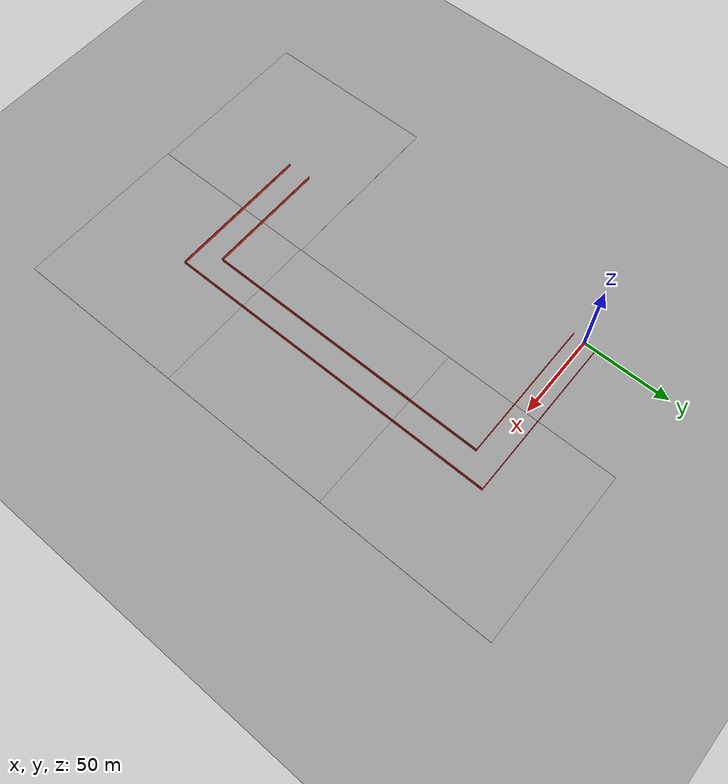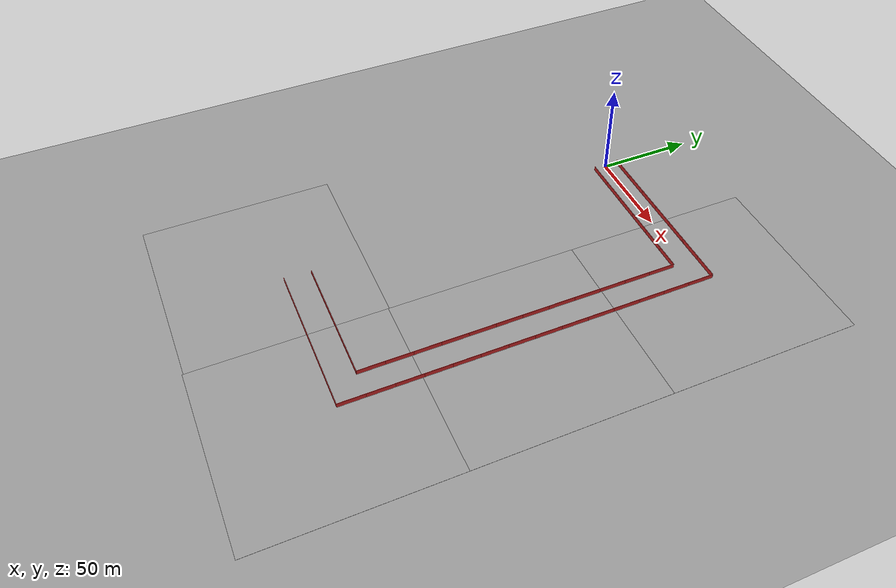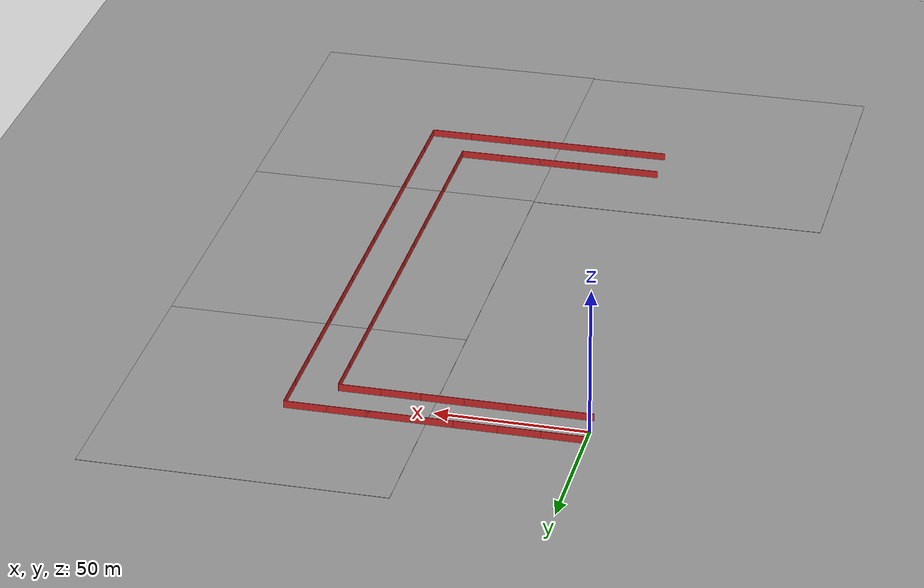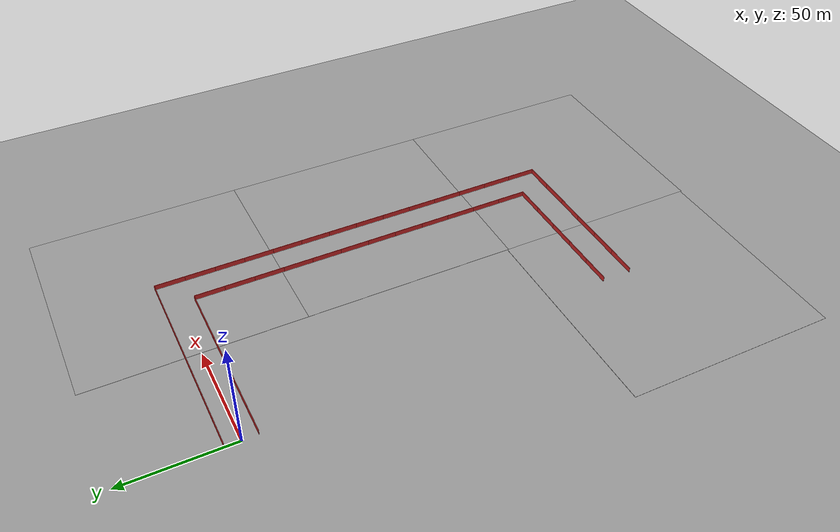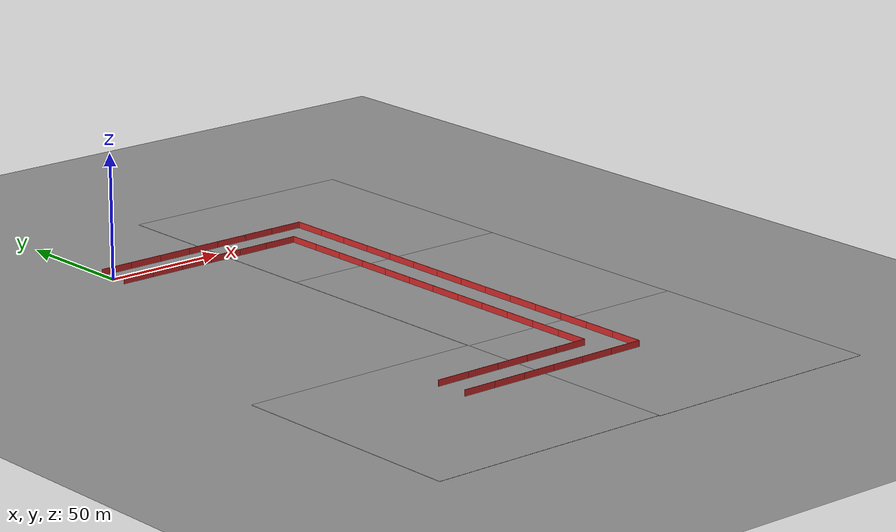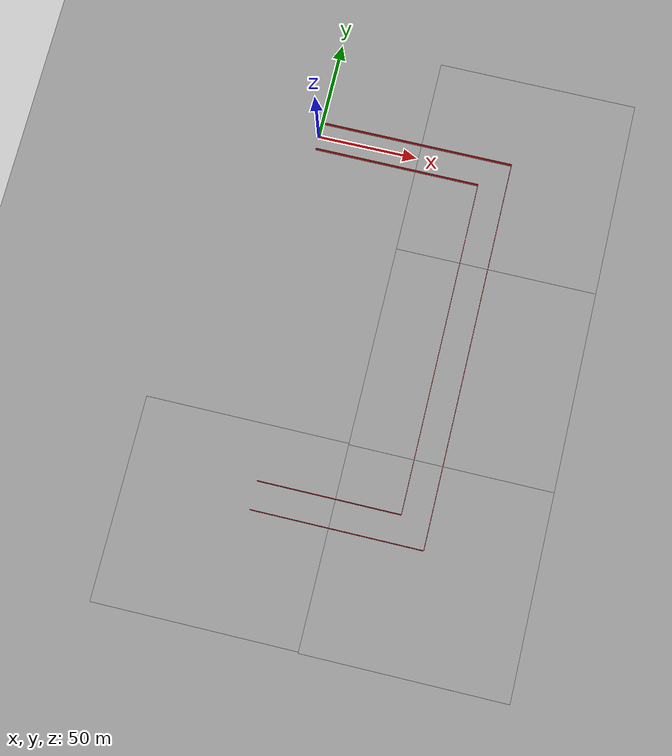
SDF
<sdf version="1.4">
 <world name="default">
  <model name="staright_14m">
   <link name="Wall_26">
    <collision name="Wall_26_Collision">
     <geometry><box><size>14 0.2 2.5</size></box></geometry>
     <pose>0 0 1.25 0 -0 0</pose>
    </collision>
    <visual name="Wall_26_Visual">
     <pose>0 0 1.25 0 -0 0</pose>
     <geometry><box><size>14 0.2 2.5</size></box></geometry>
     <material>
      <script>
       <uri>model://materials/scripts</uri>
       <uri>model://materials/textures</uri>
       <name>vrc/red_wall</name>
      </script>
     </material>
    </visual>
    <velocity_decay><linear>0</linear><angular>0</angular></velocity_decay>
    <pose>0 -7 0 0 -0 0</pose>
   </link>
   <link name="Wall_28">
    <collision name="Wall_28_Collision">
     <geometry><box><size>14 0.2 2.5</size></box></geometry>
     <pose>0 0 1.25 0 -0 0</pose>
    </collision>
    <visual name="Wall_28_Visual">
     <pose>0 0 1.25 0 -0 0</pose>
     <geometry><box><size>14 0.2 2.5</size></box></geometry>
     <material>
      <script>
       <uri>model://materials/scripts</uri>
       <uri>model://materials/textures</uri>
       <name>vrc/red_wall</name>
      </script>
     </material>
    </visual>
    <velocity_decay><linear>0</linear><angular>0</angular></velocity_decay>
    <pose>0 7 0 0 -0 0</pose>
   </link>
   <static>1</static>
   <pose>7 0 0 0 -0 0</pose>
  </model>
  <model name="staright_28m_3">
   <link name="Wall_26">
    <collision name="Wall_26_Collision">
     <geometry><box><size>14 0.2 2.5</size></box></geometry>
     <pose>0 0 1.25 0 -0 0</pose>
    </collision>
    <visual name="Wall_26_Visual">
     <pose>0 0 1.25 0 -0 0</pose>
     <geometry><box><size>14 0.2 2.5</size></box></geometry>
     <material>
      <script>
       <uri>model://materials/scripts</uri>
       <uri>model://materials/textures</uri>
       <name>vrc/red_wall</name>
      </script>
     </material>
    </visual>
    <velocity_decay><linear>0</linear><angular>0</angular></velocity_decay>
    <pose>-7 -7 0 0 -0 0</pose>
   </link>
   <link name="Wall_28">
    <collision name="Wall_28_Collision">
     <geometry><box><size>14 0.2 2.5</size></box></geometry>
     <pose>0 0 1.25 0 -0 0</pose>
    </collision>
    <visual name="Wall_28_Visual">
     <pose>0 0 1.25 0 -0 0</pose>
     <geometry><box><size>14 0.2 2.5</size></box></geometry>
     <material>
      <script>
       <uri>model://materials/scripts</uri>
       <uri>model://materials/textures</uri>
       <name>vrc/red_wall</name>
      </script>
     </material>
    </visual>
    <velocity_decay><linear>0</linear><angular>0</angular></velocity_decay>
    <pose>-7 7 0 0 -0 0</pose>
   </link>
   <static>1</static>
   <link name="Wall_27">
    <collision name="Wall_26_Collision">
     <geometry><box><size>14 0.2 2.5</size></box></geometry>
     <pose>0 0 1.25 0 -0 0</pose>
    </collision>
    <visual name="Wall_26_Visual">
     <pose>0 0 1.25 0 -0 0</pose>
     <geometry><box><size>14 0.2 2.5</size></box></geometry>
     <material>
      <script>
       <uri>model://materials/scripts</uri>
       <uri>model://materials/textures</uri>
       <name>vrc/red_wall</name>
      </script>
     </material>
    </visual>
    <velocity_decay><linear>0</linear><angular>0</angular></velocity_decay>
    <pose>7 -7 0 0 -0 0</pose>
   </link>
   <link name="Wall_29">
    <collision name="Wall_28_Collision">
     <geometry><box><size>14 0.2 2.5</size></box></geometry>
     <pose>0 0 1.25 0 -0 0</pose>
    </collision>
    <visual name="Wall_28_Visual">
     <pose>0 0 1.25 0 -0 0</pose>
     <geometry><box><size>14 0.2 2.5</size></box></geometry>
     <material>
      <script>
       <uri>model://materials/scripts</uri>
       <uri>model://materials/textures</uri>
       <name>vrc/red_wall</name>
      </script>
     </material>
    </visual>
    <velocity_decay><linear>0</linear><angular>0</angular></velocity_decay>
    <pose>7 7 0 0 -0 0</pose>
   </link>
   <static>1</static>
   <pose>90 -35 0 0 0 -1.5708</pose>
  </model>
  <model name="right_angle_turn_1">
   <link name="Wall_0">
    <collision name="Wall_0_Collision">
     <geometry><box><size>14.1 0.2 2.5</size></box></geometry>
     <pose>0 0 1.25 0 -0 0</pose>
    </collision>
    <visual name="Wall_0_Visual">
     <pose>0 0 1.25 0 -0 0</pose>
     <geometry><box><size>14.1 0.2 2.5</size></box></geometry>
     <material>
      <script>
       <uri>model://materials/scripts</uri>
       <uri>model://materials/textures</uri>
       <name>vrc/red_wall_x4</name>
      </script>
     </material>
    </visual>
    <velocity_decay><linear>0</linear><angular>0</angular></velocity_decay>
    <pose>0 -6.95 0 0 0 -1.5708</pose>
   </link>
   <link name="Wall_10">
    <collision name="Wall_10_Collision">
     <geometry><box><size>13.8 0.2 2.5</size></box></geometry>
     <pose>0 0 1.25 0 -0 0</pose>
    </collision>
    <visual name="Wall_10_Visual">
     <pose>0 0 1.25 0 -0 0</pose>
     <geometry><box><size>13.8 0.2 2.5</size></box></geometry>
     <material>
      <script>
       <uri>model://materials/scripts</uri>
       <uri>model://materials/textures</uri>
       <name>vrc/red_wall_x4</name>
      </script>
     </material>
    </visual>
    <velocity_decay><linear>0</linear><angular>0</angular></velocity_decay>
    <pose>14 7 0 0 0 -1.5708</pose>
   </link>
   <link name="Wall_2">
    <collision name="Wall_2_Collision">
     <geometry><box><size>13.9 0.2 2.5</size></box></geometry>
     <pose>0 0 1.25 0 -0 0</pose>
    </collision>
    <visual name="Wall_2_Visual">
     <pose>0 0 1.25 0 -0 0</pose>
     <geometry><box><size>13.9 0.2 2.5</size></box></geometry>
     <material>
      <script>
       <uri>model://materials/scripts</uri>
       <uri>model://materials/textures</uri>
       <name>vrc/red_wall_x4</name>
      </script>
     </material>
    </visual>
    <velocity_decay><linear>0</linear><angular>0</angular></velocity_decay>
    <pose>-7.05 0 0 0 -0 3.14159</pose>
   </link>
   <link name="Wall_4">
    <collision name="Wall_4_Collision">
     <geometry><box><size>14.1 0.2 2.5</size></box></geometry>
     <pose>0 0 1.25 0 -0 0</pose>
    </collision>
    <visual name="Wall_4_Visual">
     <pose>0 0 1.25 0 -0 0</pose>
     <geometry><box><size>14.1 0.2 2.5</size></box></geometry>
     <material>
      <script>
       <uri>model://materials/scripts</uri>
       <uri>model://materials/textures</uri>
       <name>vrc/red_wall_x4</name>
      </script>
     </material>
    </visual>
    <velocity_decay><linear>0</linear><angular>0</angular></velocity_decay>
    <pose>14 -6.95 0 0 -0 1.5708</pose>
   </link>
   <link name="Wall_6">
    <collision name="Wall_6_Collision">
     <geometry><box><size>14.1 0.2 2.5</size></box></geometry>
     <pose>0 0 1.25 0 -0 0</pose>
    </collision>
    <visual name="Wall_6_Visual">
     <pose>0 0 1.25 0 -0 0</pose>
     <geometry><box><size>14.1 0.2 2.5</size></box></geometry>
     <material>
      <script>
       <uri>model://materials/scripts</uri>
       <uri>model://materials/textures</uri>
       <name>vrc/red_wall_x4</name>
      </script>
     </material>
    </visual>
    <velocity_decay><linear>0</linear><angular>0</angular></velocity_decay>
    <pose>-6.95 14 0 0 -0 0</pose>
   </link>
   <link name="Wall_8">
    <collision name="Wall_8_Collision">
     <geometry><box><size>14 0.2 2.5</size></box></geometry>
     <pose>0 0 1.25 0 -0 0</pose>
    </collision>
    <visual name="Wall_8_Visual">
     <pose>0 0 1.25 0 -0 0</pose>
     <geometry><box><size>14 0.2 2.5</size></box></geometry>
     <material>
      <script>
       <uri>model://materials/scripts</uri>
       <uri>model://materials/textures</uri>
       <name>vrc/red_wall_x4</name>
      </script>
     </material>
    </visual>
    <velocity_decay><linear>0</linear><angular>0</angular></velocity_decay>
    <pose>7.1 14 0 0 -0 0</pose>
   </link>
   <static>1</static>
   <pose>83 -175 0 0 0 -1.57079</pose>
  </model>
  <model name="staright_28m">
   <link name="Wall_26">
    <collision name="Wall_26_Collision">
     <geometry><box><size>14 0.2 2.5</size></box></geometry>
     <pose>0 0 1.25 0 -0 0</pose>
    </collision>
    <visual name="Wall_26_Visual">
     <pose>0 0 1.25 0 -0 0</pose>
     <geometry><box><size>14 0.2 2.5</size></box></geometry>
     <material>
      <script>
       <uri>model://materials/scripts</uri>
       <uri>model://materials/textures</uri>
       <name>vrc/red_wall</name>
      </script>
     </material>
    </visual>
    <velocity_decay><linear>0</linear><angular>0</angular></velocity_decay>
    <pose>-7 -7 0 0 -0 0</pose>
   </link>
   <link name="Wall_28">
    <collision name="Wall_28_Collision">
     <geometry><box><size>14 0.2 2.5</size></box></geometry>
     <pose>0 0 1.25 0 -0 0</pose>
    </collision>
    <visual name="Wall_28_Visual">
     <pose>0 0 1.25 0 -0 0</pose>
     <geometry><box><size>14 0.2 2.5</size></box></geometry>
     <material>
      <script>
       <uri>model://materials/scripts</uri>
       <uri>model://materials/textures</uri>
       <name>vrc/red_wall</name>
      </script>
     </material>
    </visual>
    <velocity_decay><linear>0</linear><angular>0</angular></velocity_decay>
    <pose>-7 7 0 0 -0 0</pose>
   </link>
   <static>1</static>
   <link name="Wall_27">
    <collision name="Wall_26_Collision">
     <geometry><box><size>14 0.2 2.5</size></box></geometry>
     <pose>0 0 1.25 0 -0 0</pose>
    </collision>
    <visual name="Wall_26_Visual">
     <pose>0 0 1.25 0 -0 0</pose>
     <geometry><box><size>14 0.2 2.5</size></box></geometry>
     <material>
      <script>
       <uri>model://materials/scripts</uri>
       <uri>model://materials/textures</uri>
       <name>vrc/red_wall</name>
      </script>
     </material>
    </visual>
    <velocity_decay><linear>0</linear><angular>0</angular></velocity_decay>
    <pose>7 -7 0 0 -0 0</pose>
   </link>
   <link name="Wall_29">
    <collision name="Wall_28_Collision">
     <geometry><box><size>14 0.2 2.5</size></box></geometry>
     <pose>0 0 1.25 0 -0 0</pose>
    </collision>
    <visual name="Wall_28_Visual">
     <pose>0 0 1.25 0 -0 0</pose>
     <geometry><box><size>14 0.2 2.5</size></box></geometry>
     <material>
      <script>
       <uri>model://materials/scripts</uri>
       <uri>model://materials/textures</uri>
       <name>vrc/red_wall</name>
      </script>
     </material>
    </visual>
    <velocity_decay><linear>0</linear><angular>0</angular></velocity_decay>
    <pose>7 7 0 0 -0 0</pose>
   </link>
   <static>1</static>
   <pose>28 0 0 0 -0 0</pose>
  </model>
  <model name="staright_28m_0">
   <link name="Wall_26">
    <collision name="Wall_26_Collision">
     <geometry><box><size>14 0.2 2.5</size></box></geometry>
     <pose>0 0 1.25 0 -0 0</pose>
    </collision>
    <visual name="Wall_26_Visual">
     <pose>0 0 1.25 0 -0 0</pose>
     <geometry><box><size>14 0.2 2.5</size></box></geometry>
     <material>
      <script>
       <uri>model://materials/scripts</uri>
       <uri>model://materials/textures</uri>
       <name>vrc/red_wall</name>
      </script>
     </material>
    </visual>
    <velocity_decay><linear>0</linear><angular>0</angular></velocity_decay>
    <pose>-7 -7 0 0 -0 0</pose>
   </link>
   <link name="Wall_28">
    <collision name="Wall_28_Collision">
     <geometry><box><size>14 0.2 2.5</size></box></geometry>
     <pose>0 0 1.25 0 -0 0</pose>
    </collision>
    <visual name="Wall_28_Visual">
     <pose>0 0 1.25 0 -0 0</pose>
     <geometry><box><size>14 0.2 2.5</size></box></geometry>
     <material>
      <script>
       <uri>model://materials/scripts</uri>
       <uri>model://materials/textures</uri>
       <name>vrc/red_wall</name>
      </script>
     </material>
    </visual>
    <velocity_decay><linear>0</linear><angular>0</angular></velocity_decay>
    <pose>-7 7 0 0 -0 0</pose>
   </link>
   <static>1</static>
   <link name="Wall_27">
    <collision name="Wall_26_Collision">
     <geometry><box><size>14 0.2 2.5</size></box></geometry>
     <pose>0 0 1.25 0 -0 0</pose>
    </collision>
    <visual name="Wall_26_Visual">
     <pose>0 0 1.25 0 -0 0</pose>
     <geometry><box><size>14 0.2 2.5</size></box></geometry>
     <material>
      <script>
       <uri>model://materials/scripts</uri>
       <uri>model://materials/textures</uri>
       <name>vrc/red_wall</name>
      </script>
     </material>
    </visual>
    <velocity_decay><linear>0</linear><angular>0</angular></velocity_decay>
    <pose>7 -7 0 0 -0 0</pose>
   </link>
   <link name="Wall_29">
    <collision name="Wall_28_Collision">
     <geometry><box><size>14 0.2 2.5</size></box></geometry>
     <pose>0 0 1.25 0 -0 0</pose>
    </collision>
    <visual name="Wall_28_Visual">
     <pose>0 0 1.25 0 -0 0</pose>
     <geometry><box><size>14 0.2 2.5</size></box></geometry>
     <material>
      <script>
       <uri>model://materials/scripts</uri>
       <uri>model://materials/textures</uri>
       <name>vrc/red_wall</name>
      </script>
     </material>
    </visual>
    <velocity_decay><linear>0</linear><angular>0</angular></velocity_decay>
    <pose>7 7 0 0 -0 0</pose>
   </link>
   <static>1</static>
   <pose>56 0 0 0 -0 0</pose>
  </model>
  <model name="right_angle_turn_2">
   <link name="Wall_0">
    <collision name="Wall_0_Collision">
     <geometry><box><size>14.1 0.2 2.5</size></box></geometry>
     <pose>0 0 1.25 0 -0 0</pose>
    </collision>
    <visual name="Wall_0_Visual">
     <pose>0 0 1.25 0 -0 0</pose>
     <geometry><box><size>14.1 0.2 2.5</size></box></geometry>
     <material>
      <script>
       <uri>model://materials/scripts</uri>
       <uri>model://materials/textures</uri>
       <name>vrc/red_wall_x4</name>
      </script>
     </material>
    </visual>
    <velocity_decay><linear>0</linear><angular>0</angular></velocity_decay>
    <pose>0 -6.95 0 0 0 -1.5708</pose>
   </link>
   <link name="Wall_10">
    <collision name="Wall_10_Collision">
     <geometry><box><size>13.8 0.2 2.5</size></box></geometry>
     <pose>0 0 1.25 0 -0 0</pose>
    </collision>
    <visual name="Wall_10_Visual">
     <pose>0 0 1.25 0 -0 0</pose>
     <geometry><box><size>13.8 0.2 2.5</size></box></geometry>
     <material>
      <script>
       <uri>model://materials/scripts</uri>
       <uri>model://materials/textures</uri>
       <name>vrc/red_wall_x4</name>
      </script>
     </material>
    </visual>
    <velocity_decay><linear>0</linear><angular>0</angular></velocity_decay>
    <pose>14 7 0 0 0 -1.5708</pose>
   </link>
   <link name="Wall_2">
    <collision name="Wall_2_Collision">
     <geometry><box><size>13.9 0.2 2.5</size></box></geometry>
     <pose>0 0 1.25 0 -0 0</pose>
    </collision>
    <visual name="Wall_2_Visual">
     <pose>0 0 1.25 0 -0 0</pose>
     <geometry><box><size>13.9 0.2 2.5</size></box></geometry>
     <material>
      <script>
       <uri>model://materials/scripts</uri>
       <uri>model://materials/textures</uri>
       <name>vrc/red_wall_x4</name>
      </script>
     </material>
    </visual>
    <velocity_decay><linear>0</linear><angular>0</angular></velocity_decay>
    <pose>-7.05 0 0 0 -0 3.14159</pose>
   </link>
   <link name="Wall_4">
    <collision name="Wall_4_Collision">
     <geometry><box><size>14.1 0.2 2.5</size></box></geometry>
     <pose>0 0 1.25 0 -0 0</pose>
    </collision>
    <visual name="Wall_4_Visual">
     <pose>0 0 1.25 0 -0 0</pose>
     <geometry><box><size>14.1 0.2 2.5</size></box></geometry>
     <material>
      <script>
       <uri>model://materials/scripts</uri>
       <uri>model://materials/textures</uri>
       <name>vrc/red_wall_x4</name>
      </script>
     </material>
    </visual>
    <velocity_decay><linear>0</linear><angular>0</angular></velocity_decay>
    <pose>14 -6.95 0 0 -0 1.5708</pose>
   </link>
   <link name="Wall_6">
    <collision name="Wall_6_Collision">
     <geometry><box><size>14.1 0.2 2.5</size></box></geometry>
     <pose>0 0 1.25 0 -0 0</pose>
    </collision>
    <visual name="Wall_6_Visual">
     <pose>0 0 1.25 0 -0 0</pose>
     <geometry><box><size>14.1 0.2 2.5</size></box></geometry>
     <material>
      <script>
       <uri>model://materials/scripts</uri>
       <uri>model://materials/textures</uri>
       <name>vrc/red_wall_x4</name>
      </script>
     </material>
    </visual>
    <velocity_decay><linear>0</linear><angular>0</angular></velocity_decay>
    <pose>-6.95 14 0 0 -0 0</pose>
   </link>
   <link name="Wall_8">
    <collision name="Wall_8_Collision">
     <geometry><box><size>14 0.2 2.5</size></box></geometry>
     <pose>0 0 1.25 0 -0 0</pose>
    </collision>
    <visual name="Wall_8_Visual">
     <pose>0 0 1.25 0 -0 0</pose>
     <geometry><box><size>14 0.2 2.5</size></box></geometry>
     <material>
      <script>
       <uri>model://materials/scripts</uri>
       <uri>model://materials/textures</uri>
       <name>vrc/red_wall_x4</name>
      </script>
     </material>
    </visual>
    <velocity_decay><linear>0</linear><angular>0</angular></velocity_decay>
    <pose>7.1 14 0 0 -0 0</pose>
   </link>
   <static>1</static>
   <pose>83 -7 0 0 -0 0</pose>
  </model>
  <model name="staright_28m_4">
   <link name="Wall_26">
    <collision name="Wall_26_Collision">
     <geometry><box><size>14 0.2 2.5</size></box></geometry>
     <pose>0 0 1.25 0 -0 0</pose>
    </collision>
    <visual name="Wall_26_Visual">
     <pose>0 0 1.25 0 -0 0</pose>
     <geometry><box><size>14 0.2 2.5</size></box></geometry>
     <material>
      <script>
       <uri>model://materials/scripts</uri>
       <uri>model://materials/textures</uri>
       <name>vrc/red_wall</name>
      </script>
     </material>
    </visual>
    <velocity_decay><linear>0</linear><angular>0</angular></velocity_decay>
    <pose>-7 -7 0 0 -0 0</pose>
   </link>
   <link name="Wall_28">
    <collision name="Wall_28_Collision">
     <geometry><box><size>14 0.2 2.5</size></box></geometry>
     <pose>0 0 1.25 0 -0 0</pose>
    </collision>
    <visual name="Wall_28_Visual">
     <pose>0 0 1.25 0 -0 0</pose>
     <geometry><box><size>14 0.2 2.5</size></box></geometry>
     <material>
      <script>
       <uri>model://materials/scripts</uri>
       <uri>model://materials/textures</uri>
       <name>vrc/red_wall</name>
      </script>
     </material>
    </visual>
    <velocity_decay><linear>0</linear><angular>0</angular></velocity_decay>
    <pose>-7 7 0 0 -0 0</pose>
   </link>
   <static>1</static>
   <link name="Wall_27">
    <collision name="Wall_26_Collision">
     <geometry><box><size>14 0.2 2.5</size></box></geometry>
     <pose>0 0 1.25 0 -0 0</pose>
    </collision>
    <visual name="Wall_26_Visual">
     <pose>0 0 1.25 0 -0 0</pose>
     <geometry><box><size>14 0.2 2.5</size></box></geometry>
     <material>
      <script>
       <uri>model://materials/scripts</uri>
       <uri>model://materials/textures</uri>
       <name>vrc/red_wall</name>
      </script>
     </material>
    </visual>
    <velocity_decay><linear>0</linear><angular>0</angular></velocity_decay>
    <pose>7 -7 0 0 -0 0</pose>
   </link>
   <link name="Wall_29">
    <collision name="Wall_28_Collision">
     <geometry><box><size>14 0.2 2.5</size></box></geometry>
     <pose>0 0 1.25 0 -0 0</pose>
    </collision>
    <visual name="Wall_28_Visual">
     <pose>0 0 1.25 0 -0 0</pose>
     <geometry><box><size>14 0.2 2.5</size></box></geometry>
     <material>
      <script>
       <uri>model://materials/scripts</uri>
       <uri>model://materials/textures</uri>
       <name>vrc/red_wall</name>
      </script>
     </material>
    </visual>
    <velocity_decay><linear>0</linear><angular>0</angular></velocity_decay>
    <pose>7 7 0 0 -0 0</pose>
   </link>
   <static>1</static>
   <pose>90 -63 0 0 0 -1.5708</pose>
  </model>
  <model name="staright_28m_5">
   <link name="Wall_26">
    <collision name="Wall_26_Collision">
     <geometry><box><size>14 0.2 2.5</size></box></geometry>
     <pose>0 0 1.25 0 -0 0</pose>
    </collision>
    <visual name="Wall_26_Visual">
     <pose>0 0 1.25 0 -0 0</pose>
     <geometry><box><size>14 0.2 2.5</size></box></geometry>
     <material>
      <script>
       <uri>model://materials/scripts</uri>
       <uri>model://materials/textures</uri>
       <name>vrc/red_wall</name>
      </script>
     </material>
    </visual>
    <velocity_decay><linear>0</linear><angular>0</angular></velocity_decay>
    <pose>-7 -7 0 0 -0 0</pose>
   </link>
   <link name="Wall_28">
    <collision name="Wall_28_Collision">
     <geometry><box><size>14 0.2 2.5</size></box></geometry>
     <pose>0 0 1.25 0 -0 0</pose>
    </collision>
    <visual name="Wall_28_Visual">
     <pose>0 0 1.25 0 -0 0</pose>
     <geometry><box><size>14 0.2 2.5</size></box></geometry>
     <material>
      <script>
       <uri>model://materials/scripts</uri>
       <uri>model://materials/textures</uri>
       <name>vrc/red_wall</name>
      </script>
     </material>
    </visual>
    <velocity_decay><linear>0</linear><angular>0</angular></velocity_decay>
    <pose>-7 7 0 0 -0 0</pose>
   </link>
   <static>1</static>
   <link name="Wall_27">
    <collision name="Wall_26_Collision">
     <geometry><box><size>14 0.2 2.5</size></box></geometry>
     <pose>0 0 1.25 0 -0 0</pose>
    </collision>
    <visual name="Wall_26_Visual">
     <pose>0 0 1.25 0 -0 0</pose>
     <geometry><box><size>14 0.2 2.5</size></box></geometry>
     <material>
      <script>
       <uri>model://materials/scripts</uri>
       <uri>model://materials/textures</uri>
       <name>vrc/red_wall</name>
      </script>
     </material>
    </visual>
    <velocity_decay><linear>0</linear><angular>0</angular></velocity_decay>
    <pose>7 -7 0 0 -0 0</pose>
   </link>
   <link name="Wall_29">
    <collision name="Wall_28_Collision">
     <geometry><box><size>14 0.2 2.5</size></box></geometry>
     <pose>0 0 1.25 0 -0 0</pose>
    </collision>
    <visual name="Wall_28_Visual">
     <pose>0 0 1.25 0 -0 0</pose>
     <geometry><box><size>14 0.2 2.5</size></box></geometry>
     <material>
      <script>
       <uri>model://materials/scripts</uri>
       <uri>model://materials/textures</uri>
       <name>vrc/red_wall</name>
      </script>
     </material>
    </visual>
    <velocity_decay><linear>0</linear><angular>0</angular></velocity_decay>
    <pose>7 7 0 0 -0 0</pose>
   </link>
   <static>1</static>
   <pose>27 -182 0 0 -0 0</pose>
  </model>
  <model name="staright_28m_6">
   <link name="Wall_26">
    <collision name="Wall_26_Collision">
     <geometry><box><size>14 0.2 2.5</size></box></geometry>
     <pose>0 0 1.25 0 -0 0</pose>
    </collision>
    <visual name="Wall_26_Visual">
     <pose>0 0 1.25 0 -0 0</pose>
     <geometry><box><size>14 0.2 2.5</size></box></geometry>
     <material>
      <script>
       <uri>model://materials/scripts</uri>
       <uri>model://materials/textures</uri>
       <name>vrc/red_wall</name>
      </script>
     </material>
    </visual>
    <velocity_decay><linear>0</linear><angular>0</angular></velocity_decay>
    <pose>-7 -7 0 0 -0 0</pose>
   </link>
   <link name="Wall_28">
    <collision name="Wall_28_Collision">
     <geometry><box><size>14 0.2 2.5</size></box></geometry>
     <pose>0 0 1.25 0 -0 0</pose>
    </collision>
    <visual name="Wall_28_Visual">
     <pose>0 0 1.25 0 -0 0</pose>
     <geometry><box><size>14 0.2 2.5</size></box></geometry>
     <material>
      <script>
       <uri>model://materials/scripts</uri>
       <uri>model://materials/textures</uri>
       <name>vrc/red_wall</name>
      </script>
     </material>
    </visual>
    <velocity_decay><linear>0</linear><angular>0</angular></velocity_decay>
    <pose>-7 7 0 0 -0 0</pose>
   </link>
   <static>1</static>
   <link name="Wall_27">
    <collision name="Wall_26_Collision">
     <geometry><box><size>14 0.2 2.5</size></box></geometry>
     <pose>0 0 1.25 0 -0 0</pose>
    </collision>
    <visual name="Wall_26_Visual">
     <pose>0 0 1.25 0 -0 0</pose>
     <geometry><box><size>14 0.2 2.5</size></box></geometry>
     <material>
      <script>
       <uri>model://materials/scripts</uri>
       <uri>model://materials/textures</uri>
       <name>vrc/red_wall</name>
      </script>
     </material>
    </visual>
    <velocity_decay><linear>0</linear><angular>0</angular></velocity_decay>
    <pose>7 -7 0 0 -0 0</pose>
   </link>
   <link name="Wall_29">
    <collision name="Wall_28_Collision">
     <geometry><box><size>14 0.2 2.5</size></box></geometry>
     <pose>0 0 1.25 0 -0 0</pose>
    </collision>
    <visual name="Wall_28_Visual">
     <pose>0 0 1.25 0 -0 0</pose>
     <geometry><box><size>14 0.2 2.5</size></box></geometry>
     <material>
      <script>
       <uri>model://materials/scripts</uri>
       <uri>model://materials/textures</uri>
       <name>vrc/red_wall</name>
      </script>
     </material>
    </visual>
    <velocity_decay><linear>0</linear><angular>0</angular></velocity_decay>
    <pose>7 7 0 0 -0 0</pose>
   </link>
   <static>1</static>
   <pose>55 -182 0 0 -0 0</pose>
  </model>
  <model name="staright_28m_7">
   <link name="Wall_26">
    <collision name="Wall_26_Collision">
     <geometry><box><size>14 0.2 2.5</size></box></geometry>
     <pose>0 0 1.25 0 -0 0</pose>
    </collision>
    <visual name="Wall_26_Visual">
     <pose>0 0 1.25 0 -0 0</pose>
     <geometry><box><size>14 0.2 2.5</size></box></geometry>
     <material>
      <script>
       <uri>model://materials/scripts</uri>
       <uri>model://materials/textures</uri>
       <name>vrc/red_wall</name>
      </script>
     </material>
    </visual>
    <velocity_decay><linear>0</linear><angular>0</angular></velocity_decay>
    <pose>-7 -7 0 0 -0 0</pose>
   </link>
   <link name="Wall_28">
    <collision name="Wall_28_Collision">
     <geometry><box><size>14 0.2 2.5</size></box></geometry>
     <pose>0 0 1.25 0 -0 0</pose>
    </collision>
    <visual name="Wall_28_Visual">
     <pose>0 0 1.25 0 -0 0</pose>
     <geometry><box><size>14 0.2 2.5</size></box></geometry>
     <material>
      <script>
       <uri>model://materials/scripts</uri>
       <uri>model://materials/textures</uri>
       <name>vrc/red_wall</name>
      </script>
     </material>
    </visual>
    <velocity_decay><linear>0</linear><angular>0</angular></velocity_decay>
    <pose>-7 7 0 0 -0 0</pose>
   </link>
   <static>1</static>
   <link name="Wall_27">
    <collision name="Wall_26_Collision">
     <geometry><box><size>14 0.2 2.5</size></box></geometry>
     <pose>0 0 1.25 0 -0 0</pose>
    </collision>
    <visual name="Wall_26_Visual">
     <pose>0 0 1.25 0 -0 0</pose>
     <geometry><box><size>14 0.2 2.5</size></box></geometry>
     <material>
      <script>
       <uri>model://materials/scripts</uri>
       <uri>model://materials/textures</uri>
       <name>vrc/red_wall</name>
      </script>
     </material>
    </visual>
    <velocity_decay><linear>0</linear><angular>0</angular></velocity_decay>
    <pose>7 -7 0 0 -0 0</pose>
   </link>
   <link name="Wall_29">
    <collision name="Wall_28_Collision">
     <geometry><box><size>14 0.2 2.5</size></box></geometry>
     <pose>0 0 1.25 0 -0 0</pose>
    </collision>
    <visual name="Wall_28_Visual">
     <pose>0 0 1.25 0 -0 0</pose>
     <geometry><box><size>14 0.2 2.5</size></box></geometry>
     <material>
      <script>
       <uri>model://materials/scripts</uri>
       <uri>model://materials/textures</uri>
       <name>vrc/red_wall</name>
      </script>
     </material>
    </visual>
    <velocity_decay><linear>0</linear><angular>0</angular></velocity_decay>
    <pose>7 7 0 0 -0 0</pose>
   </link>
   <static>1</static>
   <pose>90 -91 0 0 0 -1.5708</pose>
  </model>
  <model name="staright_28m_8">
   <link name="Wall_26">
    <collision name="Wall_26_Collision">
     <geometry><box><size>14 0.2 2.5</size></box></geometry>
     <pose>0 0 1.25 0 -0 0</pose>
    </collision>
    <visual name="Wall_26_Visual">
     <pose>0 0 1.25 0 -0 0</pose>
     <geometry><box><size>14 0.2 2.5</size></box></geometry>
     <material>
      <script>
       <uri>model://materials/scripts</uri>
       <uri>model://materials/textures</uri>
       <name>vrc/red_wall</name>
      </script>
     </material>
    </visual>
    <velocity_decay><linear>0</linear><angular>0</angular></velocity_decay>
    <pose>-7 -7 0 0 -0 0</pose>
   </link>
   <link name="Wall_28">
    <collision name="Wall_28_Collision">
     <geometry><box><size>14 0.2 2.5</size></box></geometry>
     <pose>0 0 1.25 0 -0 0</pose>
    </collision>
    <visual name="Wall_28_Visual">
     <pose>0 0 1.25 0 -0 0</pose>
     <geometry><box><size>14 0.2 2.5</size></box></geometry>
     <material>
      <script>
       <uri>model://materials/scripts</uri>
       <uri>model://materials/textures</uri>
       <name>vrc/red_wall</name>
      </script>
     </material>
    </visual>
    <velocity_decay><linear>0</linear><angular>0</angular></velocity_decay>
    <pose>-7 7 0 0 -0 0</pose>
   </link>
   <static>1</static>
   <link name="Wall_27">
    <collision name="Wall_26_Collision">
     <geometry><box><size>14 0.2 2.5</size></box></geometry>
     <pose>0 0 1.25 0 -0 0</pose>
    </collision>
    <visual name="Wall_26_Visual">
     <pose>0 0 1.25 0 -0 0</pose>
     <geometry><box><size>14 0.2 2.5</size></box></geometry>
     <material>
      <script>
       <uri>model://materials/scripts</uri>
       <uri>model://materials/textures</uri>
       <name>vrc/red_wall</name>
      </script>
     </material>
    </visual>
    <velocity_decay><linear>0</linear><angular>0</angular></velocity_decay>
    <pose>7 -7 0 0 -0 0</pose>
   </link>
   <link name="Wall_29">
    <collision name="Wall_28_Collision">
     <geometry><box><size>14 0.2 2.5</size></box></geometry>
     <pose>0 0 1.25 0 -0 0</pose>
    </collision>
    <visual name="Wall_28_Visual">
     <pose>0 0 1.25 0 -0 0</pose>
     <geometry><box><size>14 0.2 2.5</size></box></geometry>
     <material>
      <script>
       <uri>model://materials/scripts</uri>
       <uri>model://materials/textures</uri>
       <name>vrc/red_wall</name>
      </script>
     </material>
    </visual>
    <velocity_decay><linear>0</linear><angular>0</angular></velocity_decay>
    <pose>7 7 0 0 -0 0</pose>
   </link>
   <static>1</static>
   <pose>90 -119 0 0 0 -1.5708</pose>
  </model>
  <model name="ground_plane_0">
   <static>1</static>
   <link name="link">
    <collision name="collision">
     <geometry><plane><normal>0 0 1</normal><size>100 100</size></plane></geometry>
     <surface><friction><ode><mu>100</mu><mu2>50</mu2></ode></friction></surface>
    </collision>
    <visual name="visual">
     <cast_shadows>0</cast_shadows>
     <geometry><plane><normal>0 0 1</normal><size>100 100</size></plane></geometry>
     <material>
      <script><uri>file://media/materials/scripts/gazebo.material</uri><name>Gazebo/Grey</name></script>
     </material>
    </visual>
    <velocity_decay><linear>0</linear><angular>0</angular></velocity_decay>
   </link>
   <pose>1 2 0 0 -0 0</pose>
  </model>
  <model name="staright_28m_1">
   <link name="Wall_26">
    <collision name="Wall_26_Collision">
     <geometry><box><size>14 0.2 2.5</size></box></geometry>
     <pose>0 0 1.25 0 -0 0</pose>
    </collision>
    <visual name="Wall_26_Visual">
     <pose>0 0 1.25 0 -0 0</pose>
     <geometry><box><size>14 0.2 2.5</size></box></geometry>
     <material>
      <script>
       <uri>model://materials/scripts</uri>
       <uri>model://materials/textures</uri>
       <name>vrc/red_wall</name>
      </script>
     </material>
    </visual>
    <velocity_decay><linear>0</linear><angular>0</angular></velocity_decay>
    <pose>-7 -7 0 0 -0 0</pose>
   </link>
   <link name="Wall_28">
    <collision name="Wall_28_Collision">
     <geometry><box><size>14 0.2 2.5</size></box></geometry>
     <pose>0 0 1.25 0 -0 0</pose>
    </collision>
    <visual name="Wall_28_Visual">
     <pose>0 0 1.25 0 -0 0</pose>
     <geometry><box><size>14 0.2 2.5</size></box></geometry>
     <material>
      <script>
       <uri>model://materials/scripts</uri>
       <uri>model://materials/textures</uri>
       <name>vrc/red_wall</name>
      </script>
     </material>
    </visual>
    <velocity_decay><linear>0</linear><angular>0</angular></velocity_decay>
    <pose>-7 7 0 0 -0 0</pose>
   </link>
   <static>1</static>
   <link name="Wall_27">
    <collision name="Wall_26_Collision">
     <geometry><box><size>14 0.2 2.5</size></box></geometry>
     <pose>0 0 1.25 0 -0 0</pose>
    </collision>
    <visual name="Wall_26_Visual">
     <pose>0 0 1.25 0 -0 0</pose>
     <geometry><box><size>14 0.2 2.5</size></box></geometry>
     <material>
      <script>
       <uri>model://materials/scripts</uri>
       <uri>model://materials/textures</uri>
       <name>vrc/red_wall</name>
      </script>
     </material>
    </visual>
    <velocity_decay><linear>0</linear><angular>0</angular></velocity_decay>
    <pose>7 -7 0 0 -0 0</pose>
   </link>
   <link name="Wall_29">
    <collision name="Wall_28_Collision">
     <geometry><box><size>14 0.2 2.5</size></box></geometry>
     <pose>0 0 1.25 0 -0 0</pose>
    </collision>
    <visual name="Wall_28_Visual">
     <pose>0 0 1.25 0 -0 0</pose>
     <geometry><box><size>14 0.2 2.5</size></box></geometry>
     <material>
      <script>
       <uri>model://materials/scripts</uri>
       <uri>model://materials/textures</uri>
       <name>vrc/red_wall</name>
      </script>
     </material>
    </visual>
    <velocity_decay><linear>0</linear><angular>0</angular></velocity_decay>
    <pose>7 7 0 0 -0 0</pose>
   </link>
   <static>1</static>
   <pose>90 -147 0 0 -0 1.5708</pose>
  </model>
  <model name="ground_plane">
   <static>1</static>
   <link name="link">
    <collision name="collision">
     <geometry><plane><normal>0 0 1</normal><size>100 100</size></plane></geometry>
     <surface><friction><ode><mu>100</mu><mu2>50</mu2></ode></friction></surface>
    </collision>
    <visual name="visual">
     <cast_shadows>0</cast_shadows>
     <geometry><plane><normal>0 0 1</normal><size>100 100</size></plane></geometry>
     <material>
      <script><uri>file://media/materials/scripts/gazebo.material</uri><name>Gazebo/Grey</name></script>
     </material>
    </visual>
    <velocity_decay><linear>0</linear><angular>0</angular></velocity_decay>
   </link>
   <pose>1 -98 0 0 -0 0</pose>
  </model>
  <model name="ground_plane_1">
   <static>1</static>
   <link name="link">
    <collision name="collision">
     <geometry><plane><normal>0 0 1</normal><size>100 100</size></plane></geometry>
     <surface><friction><ode><mu>100</mu><mu2>50</mu2></ode></friction></surface>
    </collision>
    <visual name="visual">
     <cast_shadows>0</cast_shadows>
     <geometry><plane><normal>0 0 1</normal><size>100 100</size></plane></geometry>
     <material>
      <script><uri>file://media/materials/scripts/gazebo.material</uri><name>Gazebo/Grey</name></script>
     </material>
    </visual>
    <velocity_decay><linear>0</linear><angular>0</angular></velocity_decay>
   </link>
   <pose>1 -197.421 0 0 -0 0</pose>
  </model>
  <model name="ground_plane_5">
   <static>1</static>
   <link name="link">
    <collision name="collision">
     <geometry><plane><normal>0 0 1</normal><size>100 100</size></plane></geometry>
     <surface><friction><ode><mu>100</mu><mu2>50</mu2></ode></friction></surface>
    </collision>
    <visual name="visual">
     <cast_shadows>0</cast_shadows>
     <geometry><plane><normal>0 0 1</normal><size>100 100</size></plane></geometry>
     <material>
      <script><uri>file://media/materials/scripts/gazebo.material</uri><name>Gazebo/Grey</name></script>
     </material>
    </visual>
    <velocity_decay><linear>0</linear><angular>0</angular></velocity_decay>
   </link>
   <pose>101 2 0 0 -0 0</pose>
  </model>
  <model name="ground_plane_6">
   <static>1</static>
   <link name="link">
    <collision name="collision">
     <geometry><plane><normal>0 0 1</normal><size>100 100</size></plane></geometry>
     <surface><friction><ode><mu>100</mu><mu2>50</mu2></ode></friction></surface>
    </collision>
    <visual name="visual">
     <cast_shadows>0</cast_shadows>
     <geometry><plane><normal>0 0 1</normal><size>100 100</size></plane></geometry>
     <material>
      <script><uri>file://media/materials/scripts/gazebo.material</uri><name>Gazebo/Grey</name></script>
     </material>
    </visual>
    <velocity_decay><linear>0</linear><angular>0</angular></velocity_decay>
   </link>
   <pose>101 -98 0 0 -0 0</pose>
  </model>
  <model name="ground_plane_7">
   <static>1</static>
   <link name="link">
    <collision name="collision">
     <geometry><plane><normal>0 0 1</normal><size>100 100</size></plane></geometry>
     <surface><friction><ode><mu>100</mu><mu2>50</mu2></ode></friction></surface>
    </collision>
    <visual name="visual">
     <cast_shadows>0</cast_shadows>
     <geometry><plane><normal>0 0 1</normal><size>100 100</size></plane></geometry>
     <material>
      <script><uri>file://media/materials/scripts/gazebo.material</uri><name>Gazebo/Grey</name></script>
     </material>
    </visual>
    <velocity_decay><linear>0</linear><angular>0</angular></velocity_decay>
   </link>
   <pose>101 -198 0 0 -0 0</pose>
  </model>
 </world>
</sdf>
